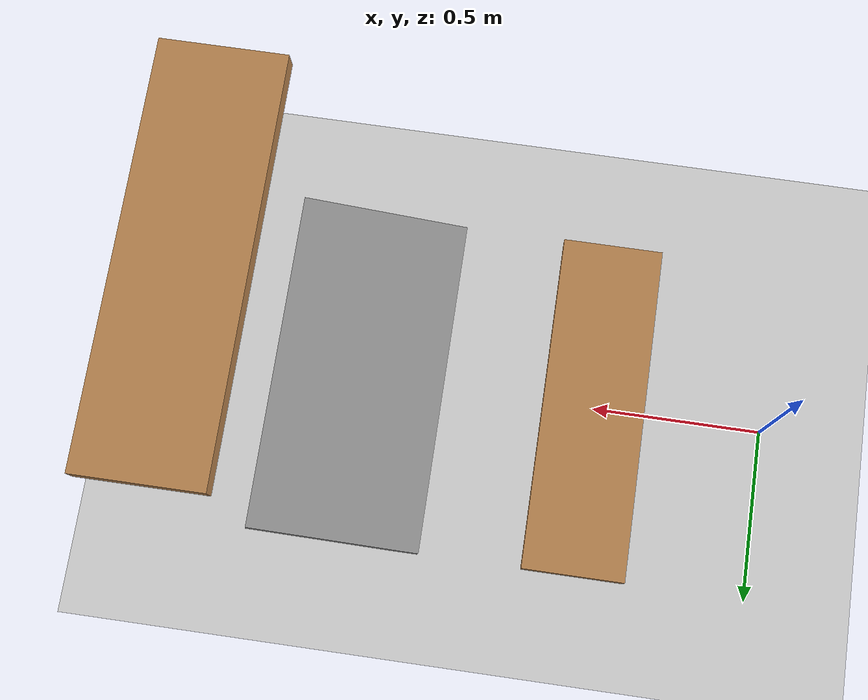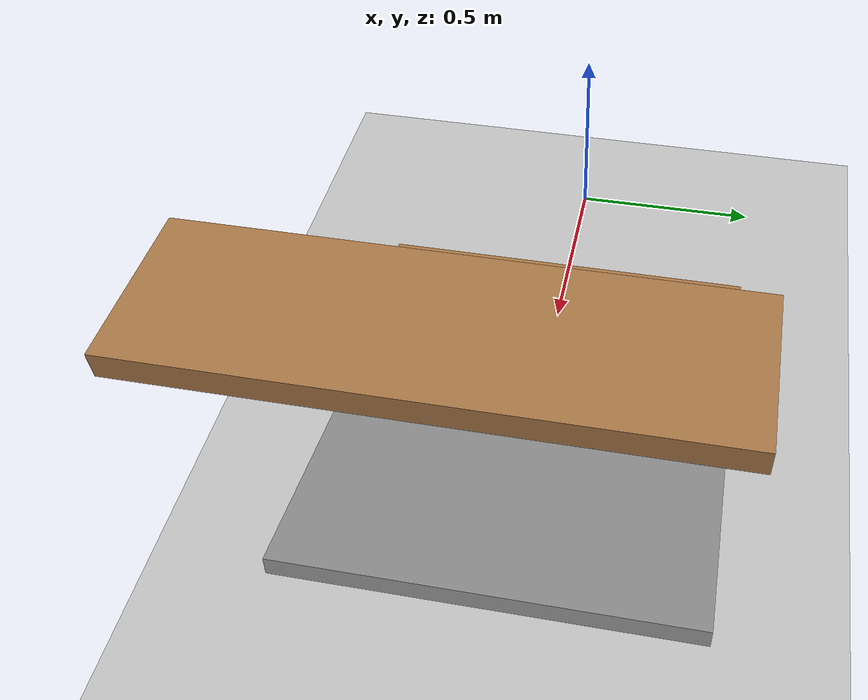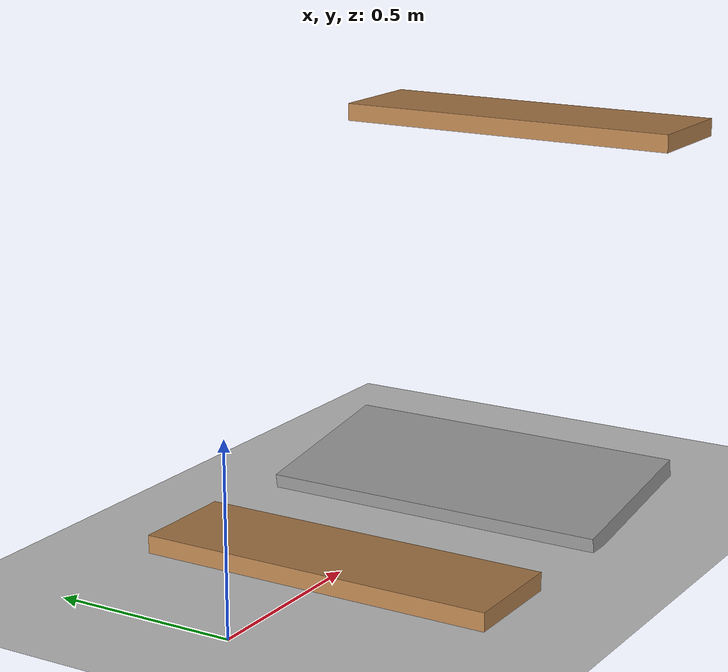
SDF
<?xml version="1.0" ?>
<sdf version="1.6">
  <world name="quadruped_world">

    <!-- Physics -->
    <physics name="default_physics" default="0" type="ode">
      <max_step_size>0.001</max_step_size>
      <real_time_factor>1</real_time_factor>
      <real_time_update_rate>1000</real_time_update_rate>
      <ode>
        <solver>
          <type>quick</type>
          <iters>50</iters>
          <sor>1.3</sor>
        </solver>
        <constraints>
          <cfm>0.0</cfm>
          <erp>0.2</erp>
          <contact_max_correcting_vel>100.0</contact_max_correcting_vel>
          <contact_surface_layer>0.001</contact_surface_layer>
        </constraints>
      </ode>
    </physics>

    <!-- Lighting -->
    <include>
      <uri>model://sun</uri>
    </include>

    <!-- Ground plane -->
    <include>
      <uri>model://ground_plane</uri>
    </include>

    <!-- Ambient light -->
    <light type="ambient" name="ambient_light">
      <color>0.4 0.4 0.4 1</color>
    </light>

    <!-- Directional light (sun) -->
    <light type="directional" name="directional_light">
      <cast_shadows>true</cast_shadows>
      <pose>0 0 10 0 0 0</pose>
      <diffuse>0.8 0.8 0.8 1</diffuse>
      <specular>0.2 0.2 0.2 1</specular>
      <direction>-0.5 0.1 -0.9</direction>
    </light>

    <!-- Small step obstacle for testing locomotion -->
    <model name="step">
      <static>true</static>
      <pose>0.5 0 0.025 0 0 0</pose>
      <link name="link">
        <collision name="collision">
          <geometry>
            <box><size>0.3 1.0 0.05</size></box>
          </geometry>
        </collision>
        <visual name="visual">
          <geometry>
            <box><size>0.3 1.0 0.05</size></box>
          </geometry>
          <material>
            <script>
              <uri>file://media/materials/scripts/gazebo.material</uri>
              <name>Gazebo/Wood</name>
            </script>
          </material>
        </visual>
      </link>
    </model>

    <!-- Ramp obstacle -->
    <model name="ramp">
      <static>true</static>
      <pose>1.2 0 0.05 0 -0.15 0</pose>
      <link name="link">
        <collision name="collision">
          <geometry>
            <box><size>0.5 1.0 0.05</size></box>
          </geometry>
        </collision>
        <visual name="visual">
          <geometry>
            <box><size>0.5 1.0 0.05</size></box>
          </geometry>
          <material>
            <script>
              <uri>file://media/materials/scripts/gazebo.material</uri>
              <name>Gazebo/Grey</name>
            </script>
          </material>
        </visual>
      </link>
    </model>

    <!-- Large obstacle for testing occupancy mapping -->
    <model name="large_obstacle">
      <static>true</static>
      <pose>1.5 0 1.025 0 0 0</pose>
      <link name="link">
        <collision name="collision">
          <geometry>
            <box><size>1.0 1.0 1.0</size></box>
          </geometry>
        </collision>
        <visual name="visual">
          <geometry>
            <box><size>0.3 1.0 0.05</size></box>
          </geometry>
          <material>
            <script>
              <uri>file://media/materials/scripts/gazebo.material</uri>
              <name>Gazebo/Wood</name>
            </script>
          </material>
        </visual>
      </link>
    </model>

    <!-- GUI camera setup -->
    <gui fullscreen="0">
      <camera name="user_camera">
        <pose>1.5 -1.5 0.8 0 0.3 2.4</pose>
        <view_controller>orbit</view_controller>
        <projection_type>perspective</projection_type>
      </camera>
    </gui>

  </world>
</sdf>
